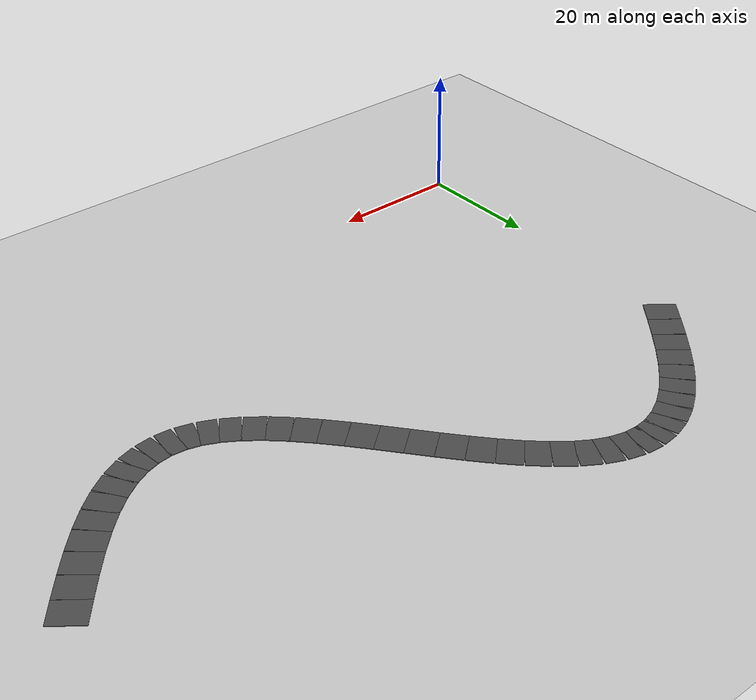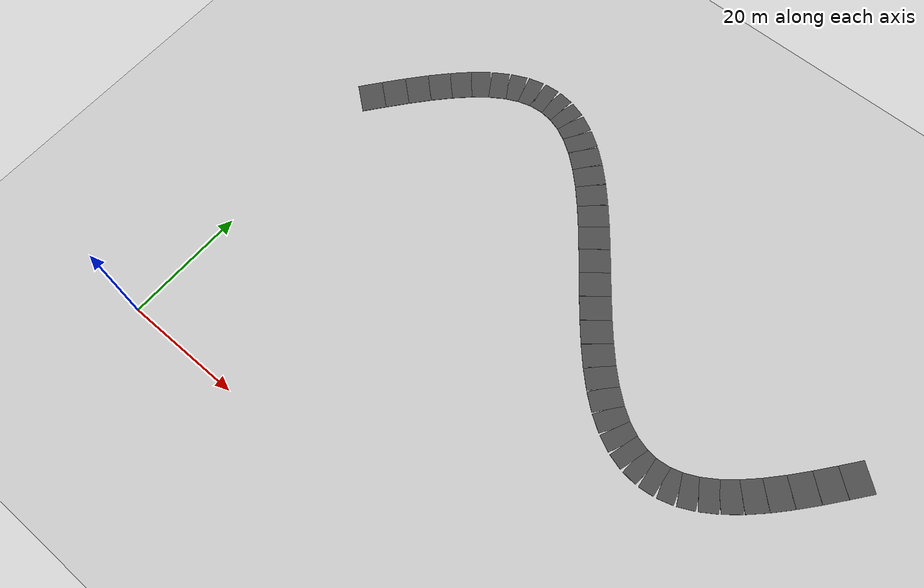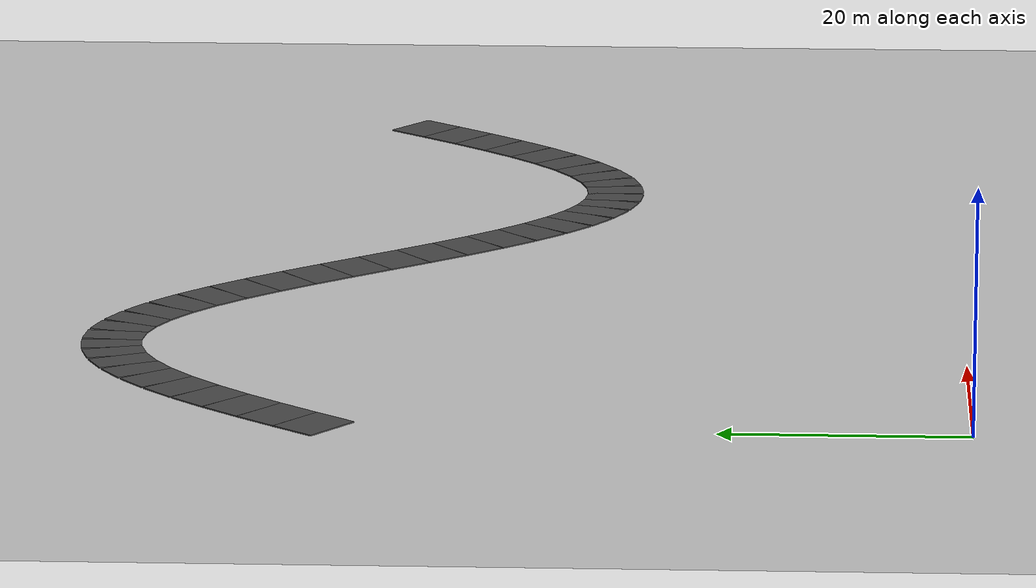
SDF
<?xml version="1.0" ?>
<sdf version="1.6">
  <world name="road_scurve_w5">
    <include>
      <uri>model://ground_plane</uri>
    </include>
    <include>
      <uri>model://sun</uri>
    </include>

    <!-- S字 100m × 5m -->
    <include>
      <uri>model://road_scurve_100m_w5</uri>
    </include>

  </world>
</sdf>

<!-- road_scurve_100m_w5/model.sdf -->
<sdf version="1.6">
  <model name="road_scurve_100m_w5">
    <static>true</static>

    <link name="panel_000">
      <pose>1.250 51.564 0.050 0 0 0.896631</pose>
      <collision name="panel_000_collision">
        <geometry>
          <box>
            <size>4.005 5.000 0.100</size>
          </box>
        </geometry>
        <surface>
          <friction>
            <ode>
              <mu>1.0</mu>
              <mu2>1.0</mu2>
            </ode>
          </friction>
        </surface>
      </collision>
      <visual name="panel_000_visual">
        <geometry>
          <box>
            <size>4.005 5.000 0.100</size>
          </box>
        </geometry>
        <material>
          <ambient>0.2 0.2 0.2 1</ambient>
          <diffuse>0.3 0.3 0.3 1</diffuse>
        </material>
      </visual>
    </link>

    <link name="panel_001">
      <pose>3.750 54.655 0.050 0 0 0.884440</pose>
      <collision name="panel_001_collision">
        <geometry>
          <box>
            <size>3.945 5.000 0.100</size>
          </box>
        </geometry>
        <surface>
          <friction>
            <ode>
              <mu>1.0</mu>
              <mu2>1.0</mu2>
            </ode>
          </friction>
        </surface>
      </collision>
      <visual name="panel_001_visual">
        <geometry>
          <box>
            <size>3.945 5.000 0.100</size>
          </box>
        </geometry>
        <material>
          <ambient>0.2 0.2 0.2 1</ambient>
          <diffuse>0.3 0.3 0.3 1</diffuse>
        </material>
      </visual>
    </link>

    <link name="panel_002">
      <pose>6.250 57.630 0.050 0 0 0.859247</pose>
      <collision name="panel_002_collision">
        <geometry>
          <box>
            <size>3.828 5.000 0.100</size>
          </box>
        </geometry>
        <surface>
          <friction>
            <ode>
              <mu>1.0</mu>
              <mu2>1.0</mu2>
            </ode>
          </friction>
        </surface>
      </collision>
      <visual name="panel_002_visual">
        <geometry>
          <box>
            <size>3.828 5.000 0.100</size>
          </box>
        </geometry>
        <material>
          <ambient>0.2 0.2 0.2 1</ambient>
          <diffuse>0.3 0.3 0.3 1</diffuse>
        </material>
      </visual>
    </link>

    <link name="panel_003">
      <pose>8.750 60.418 0.050 0 0 0.819369</pose>
      <collision name="panel_003_collision">
        <geometry>
          <box>
            <size>3.662 5.000 0.100</size>
          </box>
        </geometry>
        <surface>
          <friction>
            <ode>
              <mu>1.0</mu>
              <mu2>1.0</mu2>
            </ode>
          </friction>
        </surface>
      </collision>
      <visual name="panel_003_visual">
        <geometry>
          <box>
            <size>3.662 5.000 0.100</size>
          </box>
        </geometry>
        <material>
          <ambient>0.2 0.2 0.2 1</ambient>
          <diffuse>0.3 0.3 0.3 1</diffuse>
        </material>
      </visual>
    </link>

    <link name="panel_004">
      <pose>11.250 62.949 0.050 0 0 0.762161</pose>
      <collision name="panel_004_collision">
        <geometry>
          <box>
            <size>3.456 5.000 0.100</size>
          </box>
        </geometry>
        <surface>
          <friction>
            <ode>
              <mu>1.0</mu>
              <mu2>1.0</mu2>
            </ode>
          </friction>
        </surface>
      </collision>
      <visual name="panel_004_visual">
        <geometry>
          <box>
            <size>3.456 5.000 0.100</size>
          </box>
        </geometry>
        <material>
          <ambient>0.2 0.2 0.2 1</ambient>
          <diffuse>0.3 0.3 0.3 1</diffuse>
        </material>
      </visual>
    </link>

    <link name="panel_005">
      <pose>13.750 65.161 0.050 0 0 0.683990</pose>
      <collision name="panel_005_collision">
        <geometry>
          <box>
            <size>3.226 5.000 0.100</size>
          </box>
        </geometry>
        <surface>
          <friction>
            <ode>
              <mu>1.0</mu>
              <mu2>1.0</mu2>
            </ode>
          </friction>
        </surface>
      </collision>
      <visual name="panel_005_visual">
        <geometry>
          <box>
            <size>3.226 5.000 0.100</size>
          </box>
        </geometry>
        <material>
          <ambient>0.2 0.2 0.2 1</ambient>
          <diffuse>0.3 0.3 0.3 1</diffuse>
        </material>
      </visual>
    </link>

    <link name="panel_006">
      <pose>16.250 67.000 0.050 0 0 0.580523</pose>
      <collision name="panel_006_collision">
        <geometry>
          <box>
            <size>2.990 5.000 0.100</size>
          </box>
        </geometry>
        <surface>
          <friction>
            <ode>
              <mu>1.0</mu>
              <mu2>1.0</mu2>
            </ode>
          </friction>
        </surface>
      </collision>
      <visual name="panel_006_visual">
        <geometry>
          <box>
            <size>2.990 5.000 0.100</size>
          </box>
        </geometry>
        <material>
          <ambient>0.2 0.2 0.2 1</ambient>
          <diffuse>0.3 0.3 0.3 1</diffuse>
        </material>
      </visual>
    </link>

    <link name="panel_007">
      <pose>18.750 68.421 0.050 0 0 0.447845</pose>
      <collision name="panel_007_collision">
        <geometry>
          <box>
            <size>2.774 5.000 0.100</size>
          </box>
        </geometry>
        <surface>
          <friction>
            <ode>
              <mu>1.0</mu>
              <mu2>1.0</mu2>
            </ode>
          </friction>
        </surface>
      </collision>
      <visual name="panel_007_visual">
        <geometry>
          <box>
            <size>2.774 5.000 0.100</size>
          </box>
        </geometry>
        <material>
          <ambient>0.2 0.2 0.2 1</ambient>
          <diffuse>0.3 0.3 0.3 1</diffuse>
        </material>
      </visual>
    </link>

    <link name="panel_008">
      <pose>21.250 69.387 0.050 0 0 0.285073</pose>
      <collision name="panel_008_collision">
        <geometry>
          <box>
            <size>2.605 5.000 0.100</size>
          </box>
        </geometry>
        <surface>
          <friction>
            <ode>
              <mu>1.0</mu>
              <mu2>1.0</mu2>
            </ode>
          </friction>
        </surface>
      </collision>
      <visual name="panel_008_visual">
        <geometry>
          <box>
            <size>2.605 5.000 0.100</size>
          </box>
        </geometry>
        <material>
          <ambient>0.2 0.2 0.2 1</ambient>
          <diffuse>0.3 0.3 0.3 1</diffuse>
        </material>
      </visual>
    </link>

    <link name="panel_009">
      <pose>23.750 69.877 0.050 0 0 0.098177</pose>
      <collision name="panel_009_collision">
        <geometry>
          <box>
            <size>2.512 5.000 0.100</size>
          </box>
        </geometry>
        <surface>
          <friction>
            <ode>
              <mu>1.0</mu>
              <mu2>1.0</mu2>
            </ode>
          </friction>
        </surface>
      </collision>
      <visual name="panel_009_visual">
        <geometry>
          <box>
            <size>2.512 5.000 0.100</size>
          </box>
        </geometry>
        <material>
          <ambient>0.2 0.2 0.2 1</ambient>
          <diffuse>0.3 0.3 0.3 1</diffuse>
        </material>
      </visual>
    </link>

    <link name="panel_010">
      <pose>26.250 69.877 0.050 0 0 -0.098177</pose>
      <collision name="panel_010_collision">
        <geometry>
          <box>
            <size>2.512 5.000 0.100</size>
          </box>
        </geometry>
        <surface>
          <friction>
            <ode>
              <mu>1.0</mu>
              <mu2>1.0</mu2>
            </ode>
          </friction>
        </surface>
      </collision>
      <visual name="panel_010_visual">
        <geometry>
          <box>
            <size>2.512 5.000 0.100</size>
          </box>
        </geometry>
        <material>
          <ambient>0.2 0.2 0.2 1</ambient>
          <diffuse>0.3 0.3 0.3 1</diffuse>
        </material>
      </visual>
    </link>

    <link name="panel_011">
      <pose>28.750 69.387 0.050 0 0 -0.285073</pose>
      <collision name="panel_011_collision">
        <geometry>
          <box>
            <size>2.605 5.000 0.100</size>
          </box>
        </geometry>
        <surface>
          <friction>
            <ode>
              <mu>1.0</mu>
              <mu2>1.0</mu2>
            </ode>
          </friction>
        </surface>
      </collision>
      <visual name="panel_011_visual">
        <geometry>
          <box>
            <size>2.605 5.000 0.100</size>
          </box>
        </geometry>
        <material>
          <ambient>0.2 0.2 0.2 1</ambient>
          <diffuse>0.3 0.3 0.3 1</diffuse>
        </material>
      </visual>
    </link>

    <link name="panel_012">
      <pose>31.250 68.421 0.050 0 0 -0.447845</pose>
      <collision name="panel_012_collision">
        <geometry>
          <box>
            <size>2.774 5.000 0.100</size>
          </box>
        </geometry>
        <surface>
          <friction>
            <ode>
              <mu>1.0</mu>
              <mu2>1.0</mu2>
            </ode>
          </friction>
        </surface>
      </collision>
      <visual name="panel_012_visual">
        <geometry>
          <box>
            <size>2.774 5.000 0.100</size>
          </box>
        </geometry>
        <material>
          <ambient>0.2 0.2 0.2 1</ambient>
          <diffuse>0.3 0.3 0.3 1</diffuse>
        </material>
      </visual>
    </link>

    <link name="panel_013">
      <pose>33.750 67.000 0.050 0 0 -0.580523</pose>
      <collision name="panel_013_collision">
        <geometry>
          <box>
            <size>2.990 5.000 0.100</size>
          </box>
        </geometry>
        <surface>
          <friction>
            <ode>
              <mu>1.0</mu>
              <mu2>1.0</mu2>
            </ode>
          </friction>
        </surface>
      </collision>
      <visual name="panel_013_visual">
        <geometry>
          <box>
            <size>2.990 5.000 0.100</size>
          </box>
        </geometry>
        <material>
          <ambient>0.2 0.2 0.2 1</ambient>
          <diffuse>0.3 0.3 0.3 1</diffuse>
        </material>
      </visual>
    </link>

    <link name="panel_014">
      <pose>36.250 65.161 0.050 0 0 -0.683990</pose>
      <collision name="panel_014_collision">
        <geometry>
          <box>
            <size>3.226 5.000 0.100</size>
          </box>
        </geometry>
        <surface>
          <friction>
            <ode>
              <mu>1.0</mu>
              <mu2>1.0</mu2>
            </ode>
          </friction>
        </surface>
      </collision>
      <visual name="panel_014_visual">
        <geometry>
          <box>
            <size>3.226 5.000 0.100</size>
          </box>
        </geometry>
        <material>
          <ambient>0.2 0.2 0.2 1</ambient>
          <diffuse>0.3 0.3 0.3 1</diffuse>
        </material>
      </visual>
    </link>

    <link name="panel_015">
      <pose>38.750 62.949 0.050 0 0 -0.762161</pose>
      <collision name="panel_015_collision">
        <geometry>
          <box>
            <size>3.456 5.000 0.100</size>
          </box>
        </geometry>
        <surface>
          <friction>
            <ode>
              <mu>1.0</mu>
              <mu2>1.0</mu2>
            </ode>
          </friction>
        </surface>
      </collision>
      <visual name="panel_015_visual">
        <geometry>
          <box>
            <size>3.456 5.000 0.100</size>
          </box>
        </geometry>
        <material>
          <ambient>0.2 0.2 0.2 1</ambient>
          <diffuse>0.3 0.3 0.3 1</diffuse>
        </material>
      </visual>
    </link>

    <link name="panel_016">
      <pose>41.250 60.418 0.050 0 0 -0.819369</pose>
      <collision name="panel_016_collision">
        <geometry>
          <box>
            <size>3.662 5.000 0.100</size>
          </box>
        </geometry>
        <surface>
          <friction>
            <ode>
              <mu>1.0</mu>
              <mu2>1.0</mu2>
            </ode>
          </friction>
        </surface>
      </collision>
      <visual name="panel_016_visual">
        <geometry>
          <box>
            <size>3.662 5.000 0.100</size>
          </box>
        </geometry>
        <material>
          <ambient>0.2 0.2 0.2 1</ambient>
          <diffuse>0.3 0.3 0.3 1</diffuse>
        </material>
      </visual>
    </link>

    <link name="panel_017">
      <pose>43.750 57.630 0.050 0 0 -0.859247</pose>
      <collision name="panel_017_collision">
        <geometry>
          <box>
            <size>3.828 5.000 0.100</size>
          </box>
        </geometry>
        <surface>
          <friction>
            <ode>
              <mu>1.0</mu>
              <mu2>1.0</mu2>
            </ode>
          </friction>
        </surface>
      </collision>
      <visual name="panel_017_visual">
        <geometry>
          <box>
            <size>3.828 5.000 0.100</size>
          </box>
        </geometry>
        <material>
          <ambient>0.2 0.2 0.2 1</ambient>
          <diffuse>0.3 0.3 0.3 1</diffuse>
        </material>
      </visual>
    </link>

    <link name="panel_018">
      <pose>46.250 54.655 0.050 0 0 -0.884440</pose>
      <collision name="panel_018_collision">
        <geometry>
          <box>
            <size>3.945 5.000 0.100</size>
          </box>
        </geometry>
        <surface>
          <friction>
            <ode>
              <mu>1.0</mu>
              <mu2>1.0</mu2>
            </ode>
          </friction>
        </surface>
      </collision>
      <visual name="panel_018_visual">
        <geometry>
          <box>
            <size>3.945 5.000 0.100</size>
          </box>
        </geometry>
        <material>
          <ambient>0.2 0.2 0.2 1</ambient>
          <diffuse>0.3 0.3 0.3 1</diffuse>
        </material>
      </visual>
    </link>

    <link name="panel_019">
      <pose>48.750 51.564 0.050 0 0 -0.896631</pose>
      <collision name="panel_019_collision">
        <geometry>
          <box>
            <size>4.005 5.000 0.100</size>
          </box>
        </geometry>
        <surface>
          <friction>
            <ode>
              <mu>1.0</mu>
              <mu2>1.0</mu2>
            </ode>
          </friction>
        </surface>
      </collision>
      <visual name="panel_019_visual">
        <geometry>
          <box>
            <size>4.005 5.000 0.100</size>
          </box>
        </geometry>
        <material>
          <ambient>0.2 0.2 0.2 1</ambient>
          <diffuse>0.3 0.3 0.3 1</diffuse>
        </material>
      </visual>
    </link>

    <link name="panel_020">
      <pose>51.250 48.436 0.050 0 0 -0.896631</pose>
      <collision name="panel_020_collision">
        <geometry>
          <box>
            <size>4.005 5.000 0.100</size>
          </box>
        </geometry>
        <surface>
          <friction>
            <ode>
              <mu>1.0</mu>
              <mu2>1.0</mu2>
            </ode>
          </friction>
        </surface>
      </collision>
      <visual name="panel_020_visual">
        <geometry>
          <box>
            <size>4.005 5.000 0.100</size>
          </box>
        </geometry>
        <material>
          <ambient>0.2 0.2 0.2 1</ambient>
          <diffuse>0.3 0.3 0.3 1</diffuse>
        </material>
      </visual>
    </link>

    <link name="panel_021">
      <pose>53.750 45.345 0.050 0 0 -0.884440</pose>
      <collision name="panel_021_collision">
        <geometry>
          <box>
            <size>3.945 5.000 0.100</size>
          </box>
        </geometry>
        <surface>
          <friction>
            <ode>
              <mu>1.0</mu>
              <mu2>1.0</mu2>
            </ode>
          </friction>
        </surface>
      </collision>
      <visual name="panel_021_visual">
        <geometry>
          <box>
            <size>3.945 5.000 0.100</size>
          </box>
        </geometry>
        <material>
          <ambient>0.2 0.2 0.2 1</ambient>
          <diffuse>0.3 0.3 0.3 1</diffuse>
        </material>
      </visual>
    </link>

    <link name="panel_022">
      <pose>56.250 42.370 0.050 0 0 -0.859247</pose>
      <collision name="panel_022_collision">
        <geometry>
          <box>
            <size>3.828 5.000 0.100</size>
          </box>
        </geometry>
        <surface>
          <friction>
            <ode>
              <mu>1.0</mu>
              <mu2>1.0</mu2>
            </ode>
          </friction>
        </surface>
      </collision>
      <visual name="panel_022_visual">
        <geometry>
          <box>
            <size>3.828 5.000 0.100</size>
          </box>
        </geometry>
        <material>
          <ambient>0.2 0.2 0.2 1</ambient>
          <diffuse>0.3 0.3 0.3 1</diffuse>
        </material>
      </visual>
    </link>

    <link name="panel_023">
      <pose>58.750 39.582 0.050 0 0 -0.819369</pose>
      <collision name="panel_023_collision">
        <geometry>
          <box>
            <size>3.662 5.000 0.100</size>
          </box>
        </geometry>
        <surface>
          <friction>
            <ode>
              <mu>1.0</mu>
              <mu2>1.0</mu2>
            </ode>
          </friction>
        </surface>
      </collision>
      <visual name="panel_023_visual">
        <geometry>
          <box>
            <size>3.662 5.000 0.100</size>
          </box>
        </geometry>
        <material>
          <ambient>0.2 0.2 0.2 1</ambient>
          <diffuse>0.3 0.3 0.3 1</diffuse>
        </material>
      </visual>
    </link>

    <link name="panel_024">
      <pose>61.250 37.051 0.050 0 0 -0.762161</pose>
      <collision name="panel_024_collision">
        <geometry>
          <box>
            <size>3.456 5.000 0.100</size>
          </box>
        </geometry>
        <surface>
          <friction>
            <ode>
              <mu>1.0</mu>
              <mu2>1.0</mu2>
            </ode>
          </friction>
        </surface>
      </collision>
      <visual name="panel_024_visual">
        <geometry>
          <box>
            <size>3.456 5.000 0.100</size>
          </box>
        </geometry>
        <material>
          <ambient>0.2 0.2 0.2 1</ambient>
          <diffuse>0.3 0.3 0.3 1</diffuse>
        </material>
      </visual>
    </link>

    <link name="panel_025">
      <pose>63.750 34.839 0.050 0 0 -0.683990</pose>
      <collision name="panel_025_collision">
        <geometry>
          <box>
            <size>3.226 5.000 0.100</size>
          </box>
        </geometry>
        <surface>
          <friction>
            <ode>
              <mu>1.0</mu>
              <mu2>1.0</mu2>
            </ode>
          </friction>
        </surface>
      </collision>
      <visual name="panel_025_visual">
        <geometry>
          <box>
            <size>3.226 5.000 0.100</size>
          </box>
        </geometry>
        <material>
          <ambient>0.2 0.2 0.2 1</ambient>
          <diffuse>0.3 0.3 0.3 1</diffuse>
        </material>
      </visual>
    </link>

    <link name="panel_026">
      <pose>66.250 33.000 0.050 0 0 -0.580523</pose>
      <collision name="panel_026_collision">
        <geometry>
          <box>
            <size>2.990 5.000 0.100</size>
          </box>
        </geometry>
        <surface>
          <friction>
            <ode>
              <mu>1.0</mu>
              <mu2>1.0</mu2>
            </ode>
          </friction>
        </surface>
      </collision>
      <visual name="panel_026_visual">
        <geometry>
          <box>
            <size>2.990 5.000 0.100</size>
          </box>
        </geometry>
        <material>
          <ambient>0.2 0.2 0.2 1</ambient>
          <diffuse>0.3 0.3 0.3 1</diffuse>
        </material>
      </visual>
    </link>

    <link name="panel_027">
      <pose>68.750 31.579 0.050 0 0 -0.447845</pose>
      <collision name="panel_027_collision">
        <geometry>
          <box>
            <size>2.774 5.000 0.100</size>
          </box>
        </geometry>
        <surface>
          <friction>
            <ode>
              <mu>1.0</mu>
              <mu2>1.0</mu2>
            </ode>
          </friction>
        </surface>
      </collision>
      <visual name="panel_027_visual">
        <geometry>
          <box>
            <size>2.774 5.000 0.100</size>
          </box>
        </geometry>
        <material>
          <ambient>0.2 0.2 0.2 1</ambient>
          <diffuse>0.3 0.3 0.3 1</diffuse>
        </material>
      </visual>
    </link>

    <link name="panel_028">
      <pose>71.250 30.613 0.050 0 0 -0.285073</pose>
      <collision name="panel_028_collision">
        <geometry>
          <box>
            <size>2.605 5.000 0.100</size>
          </box>
        </geometry>
        <surface>
          <friction>
            <ode>
              <mu>1.0</mu>
              <mu2>1.0</mu2>
            </ode>
          </friction>
        </surface>
      </collision>
      <visual name="panel_028_visual">
        <geometry>
          <box>
            <size>2.605 5.000 0.100</size>
          </box>
        </geometry>
        <material>
          <ambient>0.2 0.2 0.2 1</ambient>
          <diffuse>0.3 0.3 0.3 1</diffuse>
        </material>
      </visual>
    </link>

    <link name="panel_029">
      <pose>73.750 30.123 0.050 0 0 -0.098177</pose>
      <collision name="panel_029_collision">
        <geometry>
          <box>
            <size>2.512 5.000 0.100</size>
          </box>
        </geometry>
        <surface>
          <friction>
            <ode>
              <mu>1.0</mu>
              <mu2>1.0</mu2>
            </ode>
          </friction>
        </surface>
      </collision>
      <visual name="panel_029_visual">
        <geometry>
          <box>
            <size>2.512 5.000 0.100</size>
          </box>
        </geometry>
        <material>
          <ambient>0.2 0.2 0.2 1</ambient>
          <diffuse>0.3 0.3 0.3 1</diffuse>
        </material>
      </visual>
    </link>

    <link name="panel_030">
      <pose>76.250 30.123 0.050 0 0 0.098177</pose>
      <collision name="panel_030_collision">
        <geometry>
          <box>
            <size>2.512 5.000 0.100</size>
          </box>
        </geometry>
        <surface>
          <friction>
            <ode>
              <mu>1.0</mu>
              <mu2>1.0</mu2>
            </ode>
          </friction>
        </surface>
      </collision>
      <visual name="panel_030_visual">
        <geometry>
          <box>
            <size>2.512 5.000 0.100</size>
          </box>
        </geometry>
        <material>
          <ambient>0.2 0.2 0.2 1</ambient>
          <diffuse>0.3 0.3 0.3 1</diffuse>
        </material>
      </visual>
    </link>

    <link name="panel_031">
      <pose>78.750 30.613 0.050 0 0 0.285073</pose>
      <collision name="panel_031_collision">
        <geometry>
          <box>
            <size>2.605 5.000 0.100</size>
          </box>
        </geometry>
        <surface>
          <friction>
            <ode>
              <mu>1.0</mu>
              <mu2>1.0</mu2>
            </ode>
          </friction>
        </surface>
      </collision>
      <visual name="panel_031_visual">
        <geometry>
          <box>
            <size>2.605 5.000 0.100</size>
          </box>
        </geometry>
        <material>
          <ambient>0.2 0.2 0.2 1</ambient>
          <diffuse>0.3 0.3 0.3 1</diffuse>
        </material>
      </visual>
    </link>

    <link name="panel_032">
      <pose>81.250 31.579 0.050 0 0 0.447845</pose>
      <collision name="panel_032_collision">
        <geometry>
          <box>
            <size>2.774 5.000 0.100</size>
          </box>
        </geometry>
        <surface>
          <friction>
            <ode>
              <mu>1.0</mu>
              <mu2>1.0</mu2>
            </ode>
          </friction>
        </surface>
      </collision>
      <visual name="panel_032_visual">
        <geometry>
          <box>
            <size>2.774 5.000 0.100</size>
          </box>
        </geometry>
        <material>
          <ambient>0.2 0.2 0.2 1</ambient>
          <diffuse>0.3 0.3 0.3 1</diffuse>
        </material>
      </visual>
    </link>

    <link name="panel_033">
      <pose>83.750 33.000 0.050 0 0 0.580523</pose>
      <collision name="panel_033_collision">
        <geometry>
          <box>
            <size>2.990 5.000 0.100</size>
          </box>
        </geometry>
        <surface>
          <friction>
            <ode>
              <mu>1.0</mu>
              <mu2>1.0</mu2>
            </ode>
          </friction>
        </surface>
      </collision>
      <visual name="panel_033_visual">
        <geometry>
          <box>
            <size>2.990 5.000 0.100</size>
          </box>
        </geometry>
        <material>
          <ambient>0.2 0.2 0.2 1</ambient>
          <diffuse>0.3 0.3 0.3 1</diffuse>
        </material>
      </visual>
    </link>

    <link name="panel_034">
      <pose>86.250 34.839 0.050 0 0 0.683990</pose>
      <collision name="panel_034_collision">
        <geometry>
          <box>
            <size>3.226 5.000 0.100</size>
          </box>
        </geometry>
        <surface>
          <friction>
            <ode>
              <mu>1.0</mu>
              <mu2>1.0</mu2>
            </ode>
          </friction>
        </surface>
      </collision>
      <visual name="panel_034_visual">
        <geometry>
          <box>
            <size>3.226 5.000 0.100</size>
          </box>
        </geometry>
        <material>
          <ambient>0.2 0.2 0.2 1</ambient>
          <diffuse>0.3 0.3 0.3 1</diffuse>
        </material>
      </visual>
    </link>

    <link name="panel_035">
      <pose>88.750 37.051 0.050 0 0 0.762161</pose>
      <collision name="panel_035_collision">
        <geometry>
          <box>
            <size>3.456 5.000 0.100</size>
          </box>
        </geometry>
        <surface>
          <friction>
            <ode>
              <mu>1.0</mu>
              <mu2>1.0</mu2>
            </ode>
          </friction>
        </surface>
      </collision>
      <visual name="panel_035_visual">
        <geometry>
          <box>
            <size>3.456 5.000 0.100</size>
          </box>
        </geometry>
        <material>
          <ambient>0.2 0.2 0.2 1</ambient>
          <diffuse>0.3 0.3 0.3 1</diffuse>
        </material>
      </visual>
    </link>

    <link name="panel_036">
      <pose>91.250 39.582 0.050 0 0 0.819369</pose>
      <collision name="panel_036_collision">
        <geometry>
          <box>
            <size>3.662 5.000 0.100</size>
          </box>
        </geometry>
        <surface>
          <friction>
            <ode>
              <mu>1.0</mu>
              <mu2>1.0</mu2>
            </ode>
          </friction>
        </surface>
      </collision>
      <visual name="panel_036_visual">
        <geometry>
          <box>
            <size>3.662 5.000 0.100</size>
          </box>
        </geometry>
        <material>
          <ambient>0.2 0.2 0.2 1</ambient>
          <diffuse>0.3 0.3 0.3 1</diffuse>
        </material>
      </visual>
    </link>

    <link name="panel_037">
      <pose>93.750 42.370 0.050 0 0 0.859247</pose>
      <collision name="panel_037_collision">
        <geometry>
          <box>
            <size>3.828 5.000 0.100</size>
          </box>
        </geometry>
        <surface>
          <friction>
            <ode>
              <mu>1.0</mu>
              <mu2>1.0</mu2>
            </ode>
          </friction>
        </surface>
      </collision>
      <visual name="panel_037_visual">
        <geometry>
          <box>
            <size>3.828 5.000 0.100</size>
          </box>
        </geometry>
        <material>
          <ambient>0.2 0.2 0.2 1</ambient>
          <diffuse>0.3 0.3 0.3 1</diffuse>
        </material>
      </visual>
    </link>

    <link name="panel_038">
      <pose>96.250 45.345 0.050 0 0 0.884440</pose>
      <collision name="panel_038_collision">
        <geometry>
          <box>
            <size>3.945 5.000 0.100</size>
          </box>
        </geometry>
        <surface>
          <friction>
            <ode>
              <mu>1.0</mu>
              <mu2>1.0</mu2>
            </ode>
          </friction>
        </surface>
      </collision>
      <visual name="panel_038_visual">
        <geometry>
          <box>
            <size>3.945 5.000 0.100</size>
          </box>
        </geometry>
        <material>
          <ambient>0.2 0.2 0.2 1</ambient>
          <diffuse>0.3 0.3 0.3 1</diffuse>
        </material>
      </visual>
    </link>

    <link name="panel_039">
      <pose>98.750 48.436 0.050 0 0 0.896631</pose>
      <collision name="panel_039_collision">
        <geometry>
          <box>
            <size>4.005 5.000 0.100</size>
          </box>
        </geometry>
        <surface>
          <friction>
            <ode>
              <mu>1.0</mu>
              <mu2>1.0</mu2>
            </ode>
          </friction>
        </surface>
      </collision>
      <visual name="panel_039_visual">
        <geometry>
          <box>
            <size>4.005 5.000 0.100</size>
          </box>
        </geometry>
        <material>
          <ambient>0.2 0.2 0.2 1</ambient>
          <diffuse>0.3 0.3 0.3 1</diffuse>
        </material>
      </visual>
    </link>

  </model>
</sdf>
